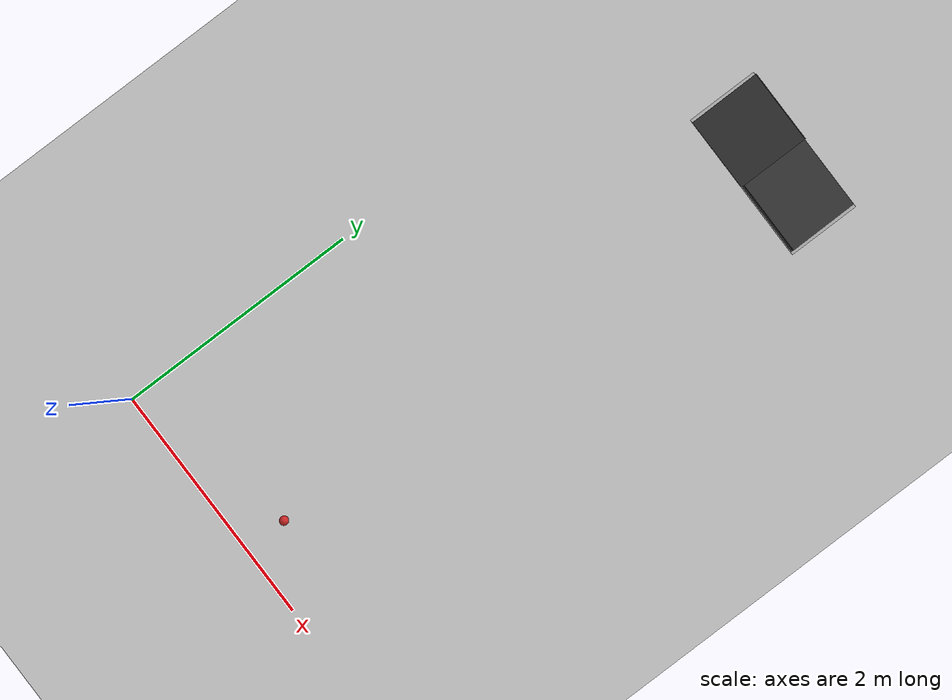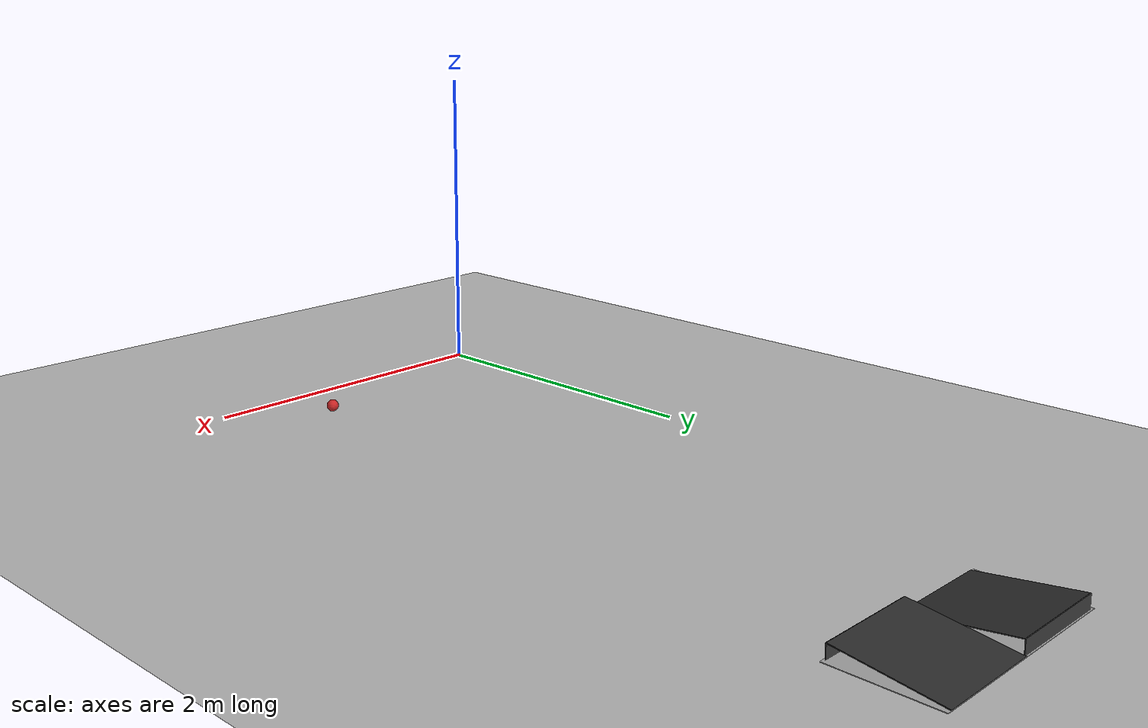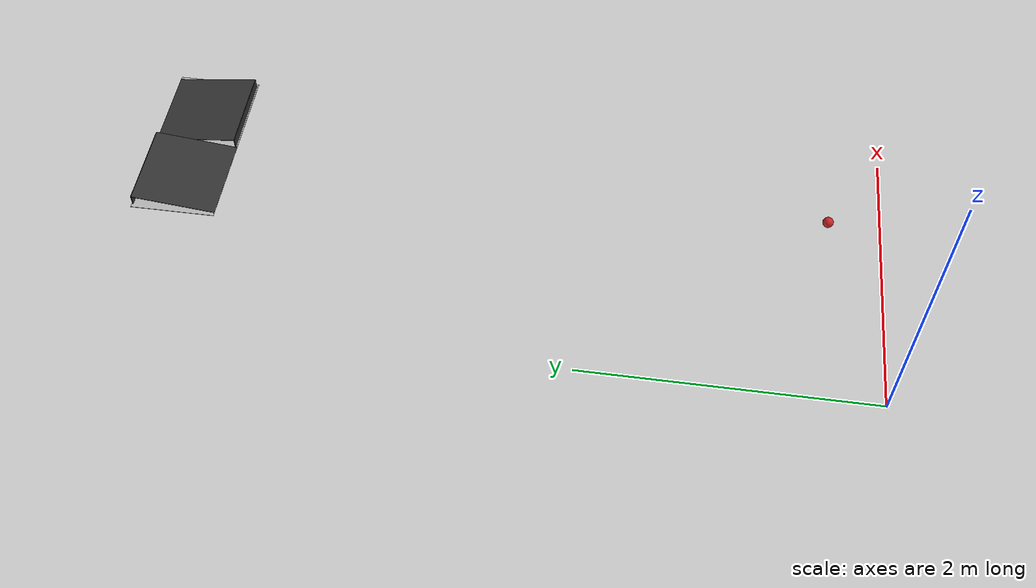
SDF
<sdf version="1.7">
 <world name="default">
  <light name="sun" type="directional">
   <pose>0 0 10 0 -0 0</pose>
   <diffuse>0.8 0.8 0.8 1</diffuse>
   <specular>0.2 0.2 0.2 1</specular>
   <attenuation>
    <range>1000</range>
    <constant>0.9</constant>
    <linear>0.01</linear>
    <quadratic>0.001</quadratic>
   </attenuation>
   <direction>-0.5 0.1 -0.9</direction>
   <spot><inner_angle>0</inner_angle><outer_angle>0</outer_angle><falloff>0</falloff></spot>
  </light>
  <model name="ground_plane">
   <static>1</static>
   <link name="link">
    <collision name="collision">
     <geometry><plane><normal>0 0 1</normal><size>100 100</size></plane></geometry>
     <surface><friction><ode><mu>100</mu><mu2>50</mu2></ode></friction></surface>
    </collision>
    <visual name="visual">
     <cast_shadows>0</cast_shadows>
     <geometry><plane><normal>0 0 1</normal><size>100 100</size></plane></geometry>
     <material>
      <script><uri>file://media/materials/scripts/gazebo.material</uri><name>Gazebo/Grey</name></script>
     </material>
    </visual>
    <enable_wind>1</enable_wind>
    <kinematic>1</kinematic>
   </link>
   <enable_wind>1</enable_wind>
  </model>
  <gravity>0 0 -9.8</gravity>
  <magnetic_field>6e-06 2.3e-05 -4.2e-05</magnetic_field>
  <atmosphere type="adiabatic"/>
  <physics type="ode">
   <max_step_size>0.001</max_step_size>
   <real_time_factor>1</real_time_factor>
   <real_time_update_rate>1000</real_time_update_rate>
  </physics>
  <scene><ambient>0.4 0.4 0.4 1</ambient><background>0.7 0.7 0.7 1</background><shadows>1</shadows></scene>
  <spherical_coordinates>
   <surface_model>EARTH_WGS84</surface_model>
   <latitude_deg>0</latitude_deg>
   <longitude_deg>0</longitude_deg>
   <elevation>0</elevation>
   <heading_deg>0</heading_deg>
  </spherical_coordinates>
  <model name="cricket_ball">
   <link name="link">
    <pose>0 0 0.0375 0 -0 0</pose>
    <inertial>
     <mass>0.1467</mass>
     <inertia>
      <ixx>8.25187e-05</ixx>
      <ixy>0</ixy>
      <ixz>0</ixz>
      <iyy>8.25187e-05</iyy>
      <iyz>0</iyz>
      <izz>8.25187e-05</izz>
     </inertia>
    </inertial>
    <collision name="collision">
     <geometry><sphere><radius>0.0375</radius></sphere></geometry>
     <surface>
      <contact>
       <poissons_ratio>0.347</poissons_ratio>
       <elastic_modulus>8.8e+09</elastic_modulus>
       <ode><kp>100000</kp><kd>100</kd><max_vel>100</max_vel><min_depth>0.001</min_depth></ode>
      </contact>
      <friction>
       <torsional>
        <coefficient>1</coefficient>
        <use_patch_radius>0</use_patch_radius>
        <surface_radius>0.01</surface_radius>
       </torsional>
      </friction>
     </surface>
    </collision>
    <visual name="visual">
     <geometry><sphere><radius>0.0375</radius></sphere></geometry>
     <material>
      <script><uri>file://media/materials/scripts/gazebo.material</uri><name>Gazebo/Red</name></script>
     </material>
    </visual>
    <velocity_decay><linear>0</linear><angular>0.005</angular></velocity_decay>
   </link>
   <pose>1.42221 0.365945 -0.001014 0 -0 0</pose>
  </model>
  <model name="frc2016_ramparts">
   <static>1</static>
   <link name="link">
    <visual name="platform">
     <pose>0 0 0.06967 0 -0 0</pose>
     <geometry><box><size>1.27 0.5969 0.003175</size></box></geometry>
    </visual>
    <collision name="platform">
     <pose>0 0 0.06967 0 -0 0</pose>
     <geometry><box><size>1.27 0.5969 0.003175</size></box></geometry>
    </collision>
    <visual name="ramp1">
     <pose>0.30472 0.00588 0.1109 -0.13 0 0</pose>
     <geometry><box><size>0.60957 0.588891 0.00462</size></box></geometry>
     <material><ambient>0.2 0.2 0.2 1</ambient><diffuse>0.2 0.2 0.2 1</diffuse></material>
    </visual>
    <collision name="ramp1">
     <pose>0.30472 0.00588 0.1109 -0.13 0 0</pose>
     <geometry><box><size>0.60957 0.588891 0.00462</size></box></geometry>
    </collision>
    <visual name="up1">
     <pose>0.30472 -0.28806 0.11072 0 -0 0</pose>
     <geometry><box><size>0.60957 0.00462 0.07872</size></box></geometry>
     <material><ambient>0.2 0.2 0.2 1</ambient><diffuse>0.2 0.2 0.2 1</diffuse></material>
    </visual>
    <collision name="up1">
     <pose>0.30472 -0.28806 0.11072 0 -0 0</pose>
     <geometry><box><size>0.60957 0.00462 0.07872</size></box></geometry>
    </collision>
    <visual name="ramp2">
     <pose>-0.30472 -0.00619 0.1109 0.13 -0 0</pose>
     <geometry><box><size>0.60957 0.588891 0.00462</size></box></geometry>
     <material><ambient>0.2 0.2 0.2 1</ambient><diffuse>0.2 0.2 0.2 1</diffuse></material>
    </visual>
    <collision name="ramp2">
     <pose>-0.30472 -0.00619 0.1109 0.13 -0 0</pose>
     <geometry><box><size>0.60957 0.588891 0.00462</size></box></geometry>
    </collision>
    <visual name="up2">
     <pose>-0.30472 0.28806 0.11072 0 -0 0</pose>
     <geometry><box><size>0.60957 0.00462 0.07872</size></box></geometry>
     <material><ambient>0.2 0.2 0.2 1</ambient><diffuse>0.2 0.2 0.2 1</diffuse></material>
    </visual>
    <collision name="up2">
     <pose>-0.30472 0.28806 0.11072 0 -0 0</pose>
     <geometry><box><size>0.60957 0.00462 0.07872</size></box></geometry>
    </collision>
   </link>
   <pose>1.50852 4.91646 0 0 -0 0</pose>
  </model>
 </world>
</sdf>
